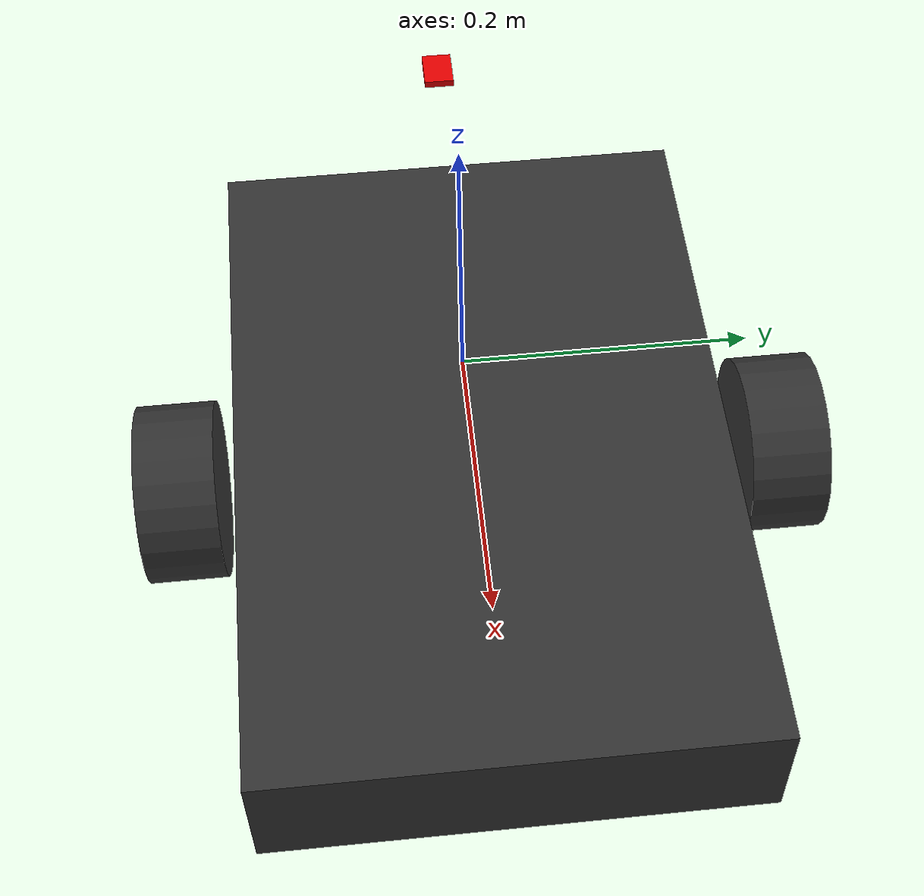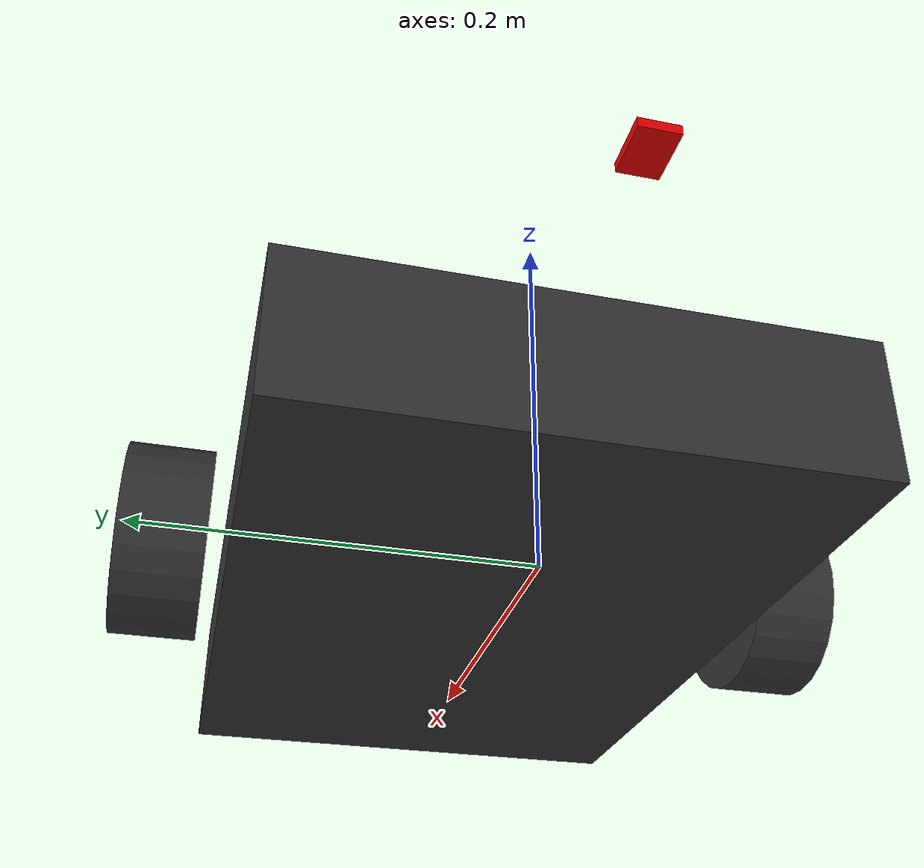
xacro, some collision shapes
<?xml version="1.0"?>
<robot xmlns:xacro="http://www.ros.org/wiki/xacro" name="uiabot">

  <!-- Properties -->
  <xacro:property name="PI" value="3.1415926535897931"/>

     <!-- Base footprint -->
  <link name="base_footprint"/>

  <!-- Robot base link-->
  <link name="base_link">
    <visual>
      <origin xyz="0.0 0.0 0.0" rpy="0 0 ${-PI/2}" />
      <geometry>
        <mesh scale="1 1 1" filename="package://uiabot/urdf/meshes/uiabot.dae"/>
      </geometry>
      <material name="gray">
        <color rgba=".2 .2 .2 1" />
      </material>
    </visual>

    <collision>
      <origin xyz="0 0 0" rpy="0 0 0" />
      <geometry>
        <box size="0.45 0.3 0.08" />
      </geometry>
      <contact_coefficients mu="0" kp="1000.0" kd="1.0"/>
    </collision>
  </link>

    <!-- Base footprint to base link joint -->
  <joint name="base_footprint_to_base_link" type="fixed">
    <parent link="base_footprint"/>
    <child link="base_link"/>
    <origin xyz="0.129 0 0.055" rpy="0 0 0"/>
  </joint>

  <!-- Left wheel link -->
  <link name="left_wheel">
    <visual>
      <origin xyz="0 0 0" rpy="0 0 0" />
      <geometry>
        <cylinder radius="0.055" length="0.048" />
      </geometry>
      <material name="gray">
        <color rgba=".2 .2 .2 1" />
      </material>
    </visual>

    <collision>
      <origin xyz="0 0 0" rpy="0 ${pi/2} 0" />
      <geometry>
        <cylinder radius="0.055" length="0.048" />
      </geometry>
      <contact_coefficients mu="0" kp="1000.0" kd="1.0"/>
    </collision>
  </link>

  <!-- Robot base to left wheel joint -->
  <joint name="base_link_to_left_wheel" type="continuous">
    <parent link="base_link"/>
    <child link="left_wheel"/>
    <origin xyz="0.0 0.185 0" rpy="${-pi/2} 0 0"/>
    <axis xyz="0 0 1"/>
  </joint>

  <!-- Right wheel link -->
  <link name="right_wheel">
    <visual>
      <origin xyz="0 0 0" rpy="0 0 0" />
      <geometry>
        <cylinder radius="0.055" length="0.048" />
      </geometry>
      <material name="gray">
        <color rgba=".2 .2 .2 1" />
      </material>
    </visual>

    <collision>
      <origin xyz="0 0 0" rpy="0 ${pi/2} 0" />
      <geometry>
        <cylinder radius="0.055" length="0.048" />
      </geometry>
      <contact_coefficients mu="0" kp="1000.0" kd="1.0"/>
    </collision>
  </link>

  <!-- Robot base to right wheel joint -->
  <joint name="base_link_to_right_wheel" type="continuous">
    <origin xyz="0.0 -0.185 0" rpy="${-pi/2} 0 0"/>
    <parent link="base_link"/>
    <child link="right_wheel"/>
    <axis xyz="0 0 1"/>
  </joint>

  <!-- IMU link -->
  <link name="bno055">
    <visual>
      <origin xyz="0 0 0" rpy="0 0 0" />
      <geometry>
        <box size="0.027 0.02 0.005" />
      </geometry>
      <material name="red">
        <color rgba=".9 .0 .0 1" />
      </material>
    </visual>

    <collision>
      <origin xyz="0 0 0" rpy="0 0 0" />
      <geometry>
        <box size="0.027 0.02 0.005" />
      </geometry>
      <contact_coefficients mu="0" kp="1000.0" kd="1.0"/>
    </collision>
  </link>

  <!-- IMU joint -->
  <joint name="base_link_to_imu" type="fixed">
    <parent link="base_link"/>
    <child link="bno055"/>
    <origin xyz="-0.299 0.0 0.06" rpy="0 0 0"/>
  </joint>

  <!-- Lidar link -->
  <link name="laser">

    <collision>
      <origin xyz="0 0 0" rpy="0 0 0" />
      <geometry>
        <cylinder radius="0.07" length="0.02" />
      </geometry>
      <contact_coefficients mu="0" kp="1000.0" kd="1.0"/>
    </collision>
  </link>

  <!-- Lidar joint -->
  <joint name="base_link_to_laser" type="fixed">
    <parent link="base_link"/>
    <child link="laser"/>
    <origin xyz="-0.28 0.0 0.18" rpy="0 0 0"/>
  </joint>

</robot>
